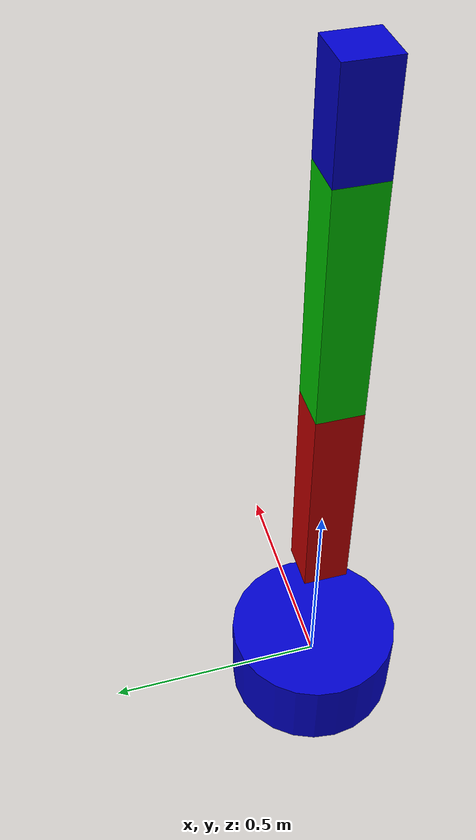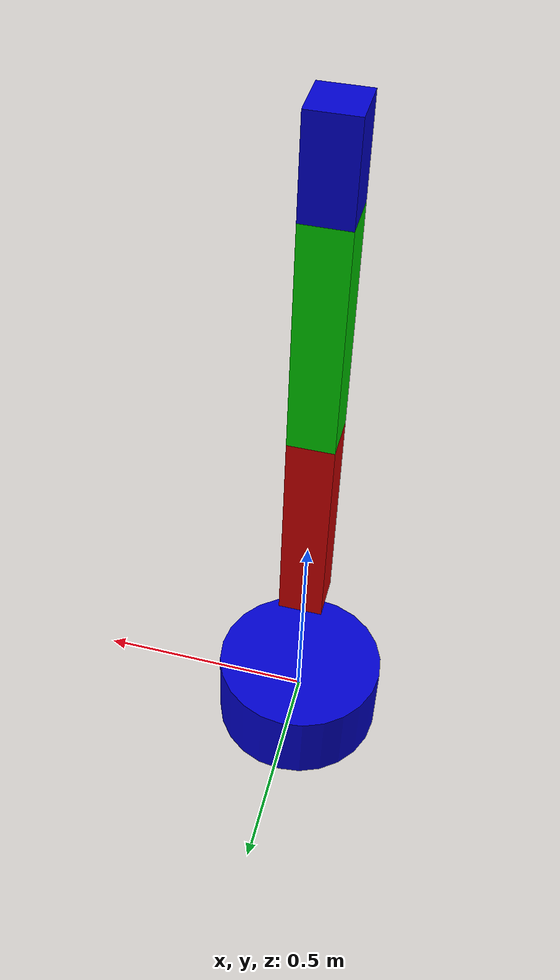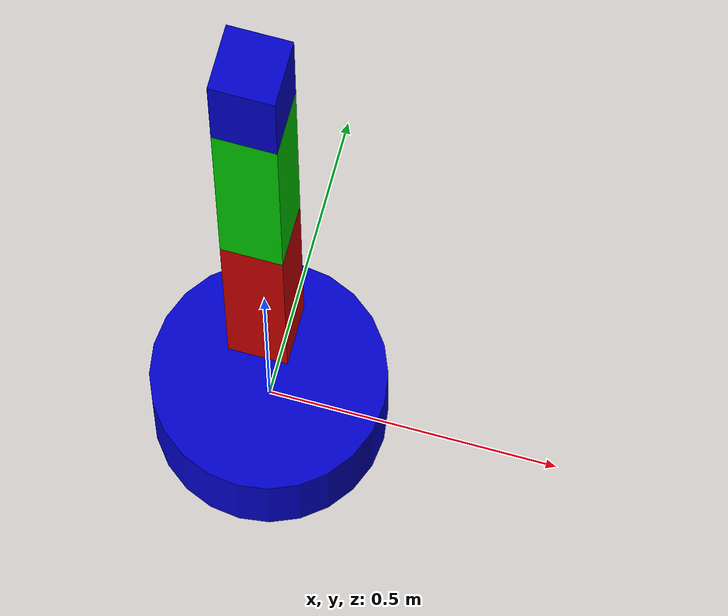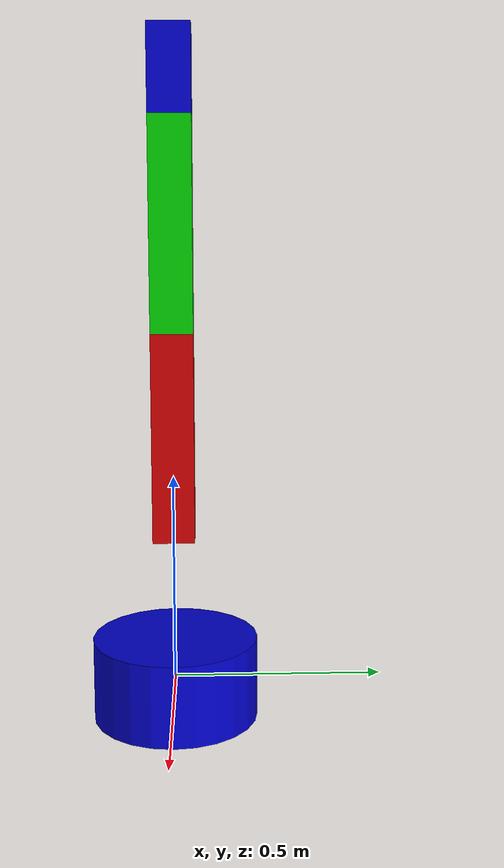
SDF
<?xml version="1.0" ?>
<sdf version="1.6">
  <model name="simple_arm">
    <plugin
      filename="gz-sim-joint-state-publisher-system"
      name="gz::sim::systems::JointStatePublisher">
    </plugin>

    <link name="base_link">
      <inertial>
        <mass>1</mass>
        <inertia>
          <ixx>0.02</ixx>
          <iyy>0.02</iyy>
          <izz>0.02</izz>
        </inertia>
      </inertial>
      <visual name="visual">
        <geometry>
          <cylinder>
            <radius>0.2</radius>
            <length>0.2</length>
          </cylinder>
        </geometry>
        <material>
          <ambient>0 0 0.8 1</ambient>
          <diffuse>0 0 0.8 1</diffuse>
        </material>
      </visual>
      <collision name="collision">
        <geometry>
          <cylinder>
            <radius>0.2</radius>
            <length>0.2</length>
          </cylinder>
        </geometry>
      </collision>
    </link>

    <link name="link1">
      <pose>0 0 0.35 0 0 0</pose>
      <inertial>
        <mass>1</mass>
        <pose>0 0 0.25 0 0 0</pose>
        <inertia>
          <ixx>0.02</ixx>
          <iyy>0.02</iyy>
          <izz>0.01</izz>
        </inertia>
      </inertial>
      <visual name="visual">
        <pose>0 0 0.25 0 0 0</pose>
        <geometry>
          <box>
            <size>0.1 0.1 0.5</size>
          </box>
        </geometry>
        <material>
          <ambient>0.8 0 0 1</ambient>
          <diffuse>0.8 0 0 1</diffuse>
        </material>
      </visual>
      <collision name="collision">
        <pose>0 0 0.25 0 0 0</pose>
        <geometry>
          <box>
            <size>0.1 0.1 0.5</size>
          </box>
        </geometry>
      </collision>
    </link>

    <joint name="joint1" type="revolute">
      <parent>base_link</parent>
      <child>link1</child>
      <pose>0 0 0 0 0 0</pose>
      <axis>
        <xyz>0 0 1</xyz>
        <limit>
          <lower>-3.14</lower>
          <upper>3.14</upper>
          <effort>100</effort>
          <velocity>100</velocity>
        </limit>
        <dynamics>
          <damping>0.1</damping>
        </dynamics>
      </axis>
    </joint>

    <link name="link2">
      <pose>0 0 0.85 0 0 0</pose>
      <inertial>
        <mass>1</mass>
        <pose>0 0 0.25 0 0 0</pose>
        <inertia>
          <ixx>0.02</ixx>
          <iyy>0.02</iyy>
          <izz>0.01</izz>
        </inertia>
      </inertial>
      <visual name="visual">
        <pose>0 0 0.25 0 0 0</pose>
        <geometry>
          <box>
            <size>0.1 0.1 0.5</size>
          </box>
        </geometry>
        <material>
          <ambient>0 0.8 0 1</ambient>
          <diffuse>0 0.8 0 1</diffuse>
        </material>
      </visual>
      <collision name="collision">
        <pose>0 0 0.25 0 0 0</pose>
        <geometry>
          <box>
            <size>0.1 0.1 0.5</size>
          </box>
        </geometry>
      </collision>
    </link>

    <joint name="joint2" type="revolute">
      <parent>link1</parent>
      <child>link2</child>
      <pose>0 0 0 0 0 0</pose>
      <axis>
        <xyz>0 1 0</xyz>
        <limit>
          <lower>-3.14</lower>
          <upper>3.14</upper>
          <effort>100</effort>
          <velocity>100</velocity>
        </limit>
        <dynamics>
          <damping>0.1</damping>
        </dynamics>
      </axis>
    </joint>

    <link name="link3">
      <pose>0 0 1.35 0 0 0</pose>
      <inertial>
        <mass>0.5</mass>
        <pose>0 0 0.1 0 0 0</pose>
        <inertia>
          <ixx>0.01</ixx>
          <iyy>0.01</iyy>
          <izz>0.005</izz>
        </inertia>
      </inertial>
      <visual name="visual">
        <pose>0 0 0.1 0 0 0</pose>
        <geometry>
          <box>
            <size>0.1 0.1 0.2</size>
          </box>
        </geometry>
        <material>
          <ambient>0 0 0.8 1</ambient>
          <diffuse>0 0 0.8 1</diffuse>
        </material>
      </visual>
      <collision name="collision">
        <pose>0 0 0.1 0 0 0</pose>
        <geometry>
          <box>
            <size>0.1 0.1 0.2</size>
          </box>
        </geometry>
      </collision>
    </link>

    <joint name="joint3" type="revolute">
      <parent>link2</parent>
      <child>link3</child>
      <pose>0 0 0 0 0 0</pose>
      <axis>
        <xyz>0 1 0</xyz>
        <limit>
          <lower>-3.14</lower>
          <upper>3.14</upper>
          <effort>100</effort>
          <velocity>100</velocity>
        </limit>
        <dynamics>
          <damping>0.1</damping>
        </dynamics>
      </axis>
    </joint>
  </model>
</sdf>
